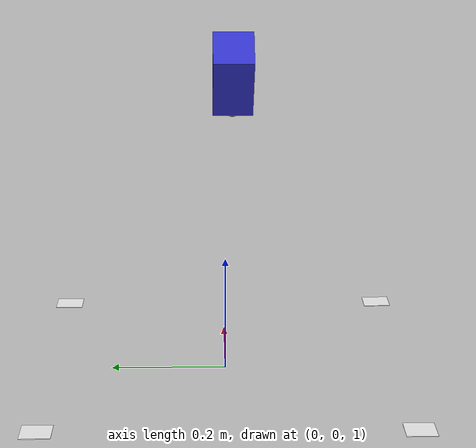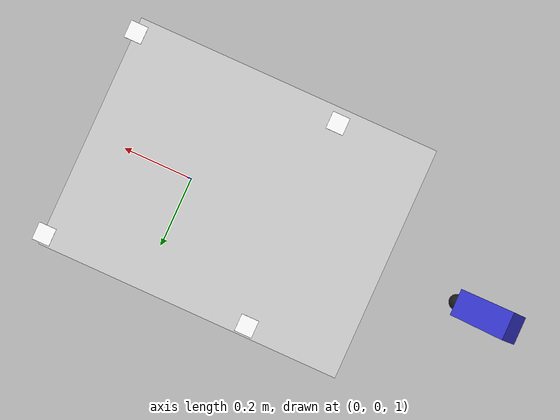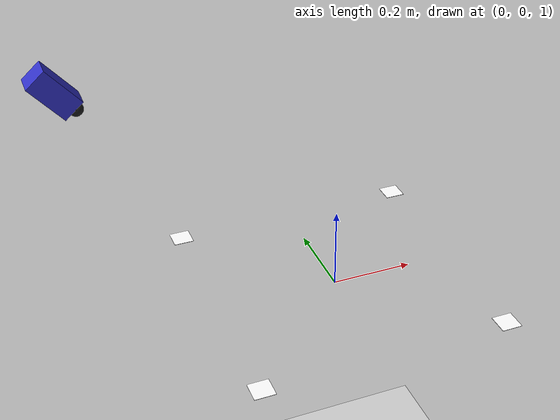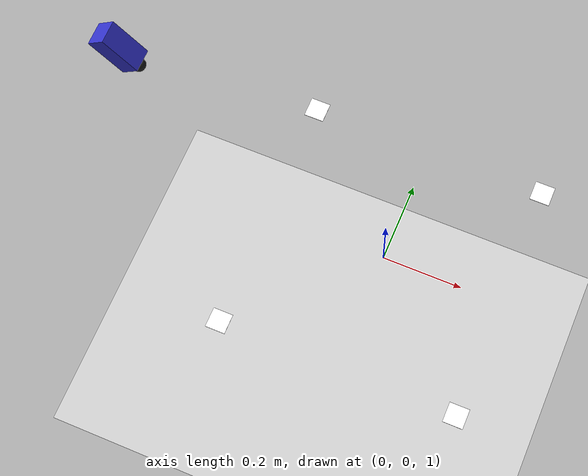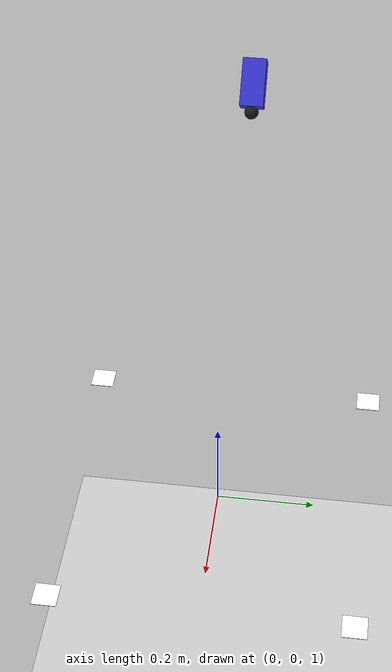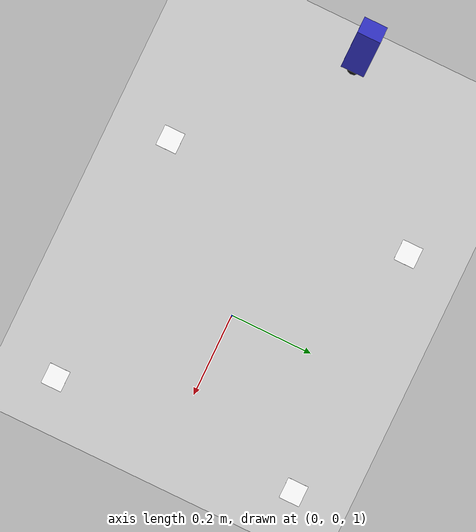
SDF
<sdf version="1.8">
 <world name="workspace_world">
  <physics name="1ms" type="ignored">
   <max_step_size>0.001</max_step_size>
   <real_time_factor>1.0</real_time_factor>
  </physics>
  <plugin filename="gz-sim-physics-system" name="gz::sim::systems::Physics"/>
  <plugin filename="gz-sim-scene-broadcaster-system" name="gz::sim::systems::SceneBroadcaster"/>
  <plugin filename="gz-sim-user-commands-system" name="gz::sim::systems::UserCommands"/>
  <plugin name="gz::sim::systems::Sensors" filename="gz-sim-sensors-system">
   <render_engine>ogre2</render_engine>
  </plugin>
  <light type="directional" name="sun">
   <pose>0 0 10 0 0 0</pose>
   <diffuse>0.8 0.8 0.8 1</diffuse>
   <specular>0.2 0.2 0.2 1</specular>
   <attenuation>
    <range>1000</range>
    <constant>0.9</constant>
    <linear>0.01</linear>
    <quadratic>0.001</quadratic>
   </attenuation>
   <direction>-0.5 0.1 -0.9</direction>
  </light>
  <model name="ground_plane">
   <static>true</static>
   <link name="link">
    <collision name="collision"><geometry><plane><normal>0 0 1</normal></plane></geometry></collision>
    <visual name="visual">
     <geometry><plane><normal>0 0 1</normal><size>100 100</size></plane></geometry>
     <material>
      <ambient>0.8 0.8 0.8 1</ambient>
      <diffuse>0.8 0.8 0.8 1</diffuse>
      <specular>0.8 0.8 0.8 1</specular>
     </material>
    </visual>
   </link>
  </model>
  <model name="rgb_camera">
   <pose>-0.60 0 1.63 0 0.86 0</pose>
   <static>true</static>
   <link name="camera_link">
    <visual name="camera_body_visual">
     <geometry><box><size>0.1 0.05 0.05</size></box></geometry>
     <material><ambient>0.1 0.1 0.8 1</ambient><diffuse>0.2 0.2 0.8 1</diffuse></material>
    </visual>
    <visual name="camera_lens_visual">
     <pose>0.06 0 0 0 0 0</pose>
     <geometry><sphere><radius>0.015</radius></sphere></geometry>
     <material>
      <ambient>0.05 0.05 0.05 1</ambient>
      <diffuse>0.1 0.1 0.1 1</diffuse>
      <specular>0.5 0.5 0.5 1</specular>
     </material>
    </visual>
    <sensor name="camera" type="camera">
     <camera>
      <horizontal_fov>1.047</horizontal_fov>
      <image><width>1280</width><height>720</height><format>R8G8B8</format></image>
      <camera_info_topic>camera/camera_info</camera_info_topic>
     </camera>
     <always_on>true</always_on>
     <update_rate>30</update_rate>
     <visualize>true</visualize>
     <topic>camera/image</topic>
    </sensor>
   </link>
  </model>
  <include>
   <name>tag0</name>
   <static>true</static>
   <pose>-0.3 -0.3 1.015 0 0 0</pose>
   <uri>model://Apriltag41_12_00000</uri>
  </include>
  <include>
   <name>tag1</name>
   <static>true</static>
   <pose>-0.3 0.3 1.015 0 0 0</pose>
   <uri>model://Apriltag41_12_00001</uri>
  </include>
  <include>
   <name>tag2</name>
   <static>true</static>
   <pose>0.3 0.3 1.015 0 0 0</pose>
   <uri>model://Apriltag41_12_00002</uri>
  </include>
  <include>
   <name>tag3</name>
   <static>true</static>
   <pose>0.3 -0.3 1.015 0 0 0</pose>
   <uri>model://Apriltag41_12_00003</uri>
  </include>
 </world>
</sdf>

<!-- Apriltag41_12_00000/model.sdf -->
<sdf version="1.9">
  <model name="tag41_12_00000">
    <static>true</static>
    <link name="link">
      <visual name="visual">
        <geometry>
          <box>
            <size>0.05 0.05 0.001</size>
          </box>
        </geometry>
        <material>
          <ambient>1 1 1 1</ambient>
          <diffuse>1 1 1 1</diffuse>
          <specular>0.5 0.5 0.5 1</specular>
          <pbr>
            <metal>
              <albedo_map>materials/textures/tag41_12_00000.png</albedo_map>
              <roughness>0.5</roughness>
              <metalness>0.0</metalness>
            </metal>
          </pbr>
        </material>
      </visual>
      <collision name="collision">
        <geometry>
          <box>
            <size>0.2 0.2 0.001</size>
          </box>
        </geometry>
      </collision>
    </link>
  </model>
</sdf>

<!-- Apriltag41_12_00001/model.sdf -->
<sdf version="1.9">
  <model name="tag41_12_00001">
    <static>true</static>
    <link name="link">
      <visual name="visual">
        <geometry>
          <box>
            <size>0.05 0.05 0.001</size>
          </box>
        </geometry>
        <material>
          <ambient>1 1 1 1</ambient>
          <diffuse>1 1 1 1</diffuse>
          <specular>0.5 0.5 0.5 1</specular>
          <pbr>
            <metal>
              <albedo_map>materials/textures/tag41_12_00001.png</albedo_map>
              <roughness>0.5</roughness>
              <metalness>0.0</metalness>
            </metal>
          </pbr>
        </material>
      </visual>
      <collision name="collision">
        <geometry>
          <box>
            <size>0.2 0.2 0.001</size>
          </box>
        </geometry>
      </collision>
    </link>
  </model>
</sdf>

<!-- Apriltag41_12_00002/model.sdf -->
<sdf version="1.9">
  <model name="tag41_12_00002">
    <static>true</static>
    <link name="link">
      <visual name="visual">
        <geometry>
          <box>
            <size>0.05 0.05 0.001</size>
          </box>
        </geometry>
        <material>
          <ambient>1 1 1 1</ambient>
          <diffuse>1 1 1 1</diffuse>
          <specular>0.5 0.5 0.5 1</specular>
          <pbr>
            <metal>
              <albedo_map>materials/textures/tag41_12_00002.png</albedo_map>
              <roughness>0.5</roughness>
              <metalness>0.0</metalness>
            </metal>
          </pbr>
        </material>
      </visual>
      <collision name="collision">
        <geometry>
          <box>
            <size>0.2 0.2 0.001</size>
          </box>
        </geometry>
      </collision>
    </link>
  </model>
</sdf>

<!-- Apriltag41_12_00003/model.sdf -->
<sdf version="1.9">
  <model name="tag41_12_00003">
    <static>true</static>
    <link name="link">
      <visual name="visual">
        <geometry>
          <box>
            <size>0.05 0.05 0.001</size>
          </box>
        </geometry>
        <material>
          <ambient>1 1 1 1</ambient>
          <diffuse>1 1 1 1</diffuse>
          <specular>0.5 0.5 0.5 1</specular>
          <pbr>
            <metal>
              <albedo_map>materials/textures/tag41_12_00003.png</albedo_map>
              <roughness>0.5</roughness>
              <metalness>0.0</metalness>
            </metal>
          </pbr>
        </material>
      </visual>
      <collision name="collision">
        <geometry>
          <box>
            <size>0.2 0.2 0.001</size>
          </box>
        </geometry>
      </collision>
    </link>
  </model>
</sdf>
